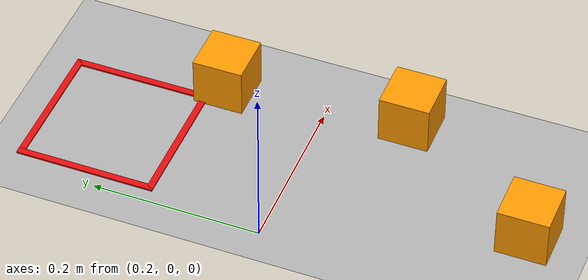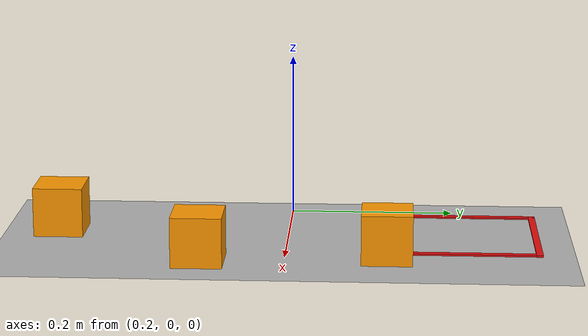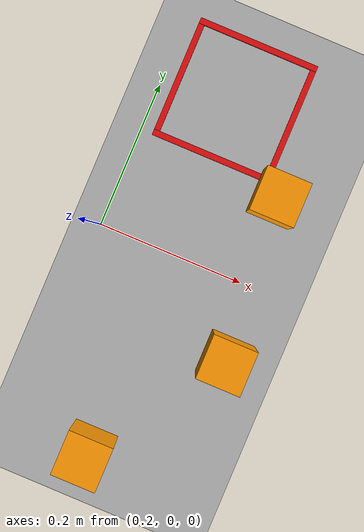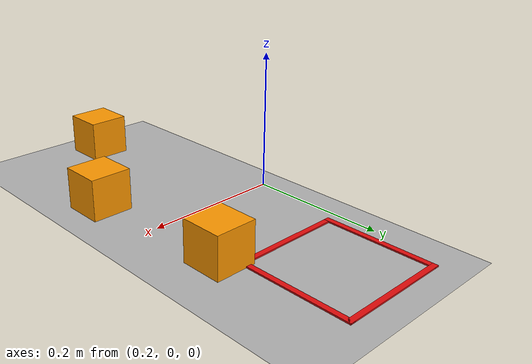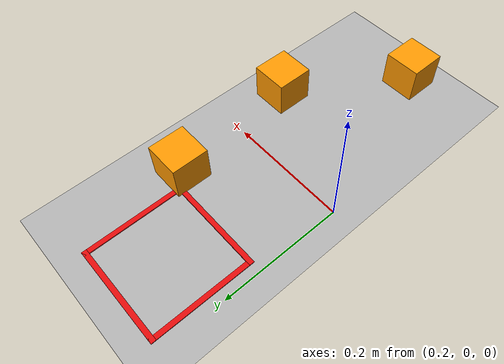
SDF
<?xml version="1.0"?>
<sdf version="1.6">
  <world name="ur3e_workcell">
    <include>
      <uri>model://sun</uri>
    </include>

    <physics type="ode">
      <real_time_update_rate>1000</real_time_update_rate>
      <max_step_size>0.001</max_step_size>
      <real_time_factor>1.0</real_time_factor>
      <ode>
        <solver>
          <type>quick</type>
          <iters>150</iters>
          <sor>1.3</sor>
        </solver>
        <constraints>
          <cfm>0.0</cfm>
          <erp>0.2</erp>
          <contact_max_correcting_vel>10.0</contact_max_correcting_vel>
          <contact_surface_layer>0.0002</contact_surface_layer>
        </constraints>
      </ode>
    </physics>

    <plugin name="gazebo_ros_state" filename="libgazebo_ros_state.so">
      <ros>
        <namespace>/gazebo</namespace>
      </ros>
      <update_rate>20.0</update_rate>
    </plugin>

    <model name="ground_plane">
      <static>true</static>
      <link name="link">
        <collision name="collision">
          <geometry>
            <plane>
              <normal>0 0 1</normal>
              <size>100 100</size>
            </plane>
          </geometry>
          <surface>
            <friction>
              <ode>
                <mu>100</mu>
                <mu2>50</mu2>
              </ode>
            </friction>
          </surface>
        </collision>
        <visual name="visual">
          <geometry>
            <plane>
              <normal>0 0 1</normal>
              <size>100 100</size>
            </plane>
          </geometry>
          <material>
            <ambient>0.7 0.7 0.7 1</ambient>
            <diffuse>0.7 0.7 0.7 1</diffuse>
          </material>
        </visual>
      </link>
    </model>

    <model name="cube_1">
      <pose>0.42 -0.1 0.03 0 0 0</pose>
      <link name="link">
        <inertial>
          <mass>0.15</mass>
          <inertia>
            <ixx>9.0e-5</ixx><ixy>0</ixy><ixz>0</ixz>
            <iyy>9.0e-5</iyy><iyz>0</iyz><izz>9.0e-5</izz>
          </inertia>
        </inertial>
        <visual name="visual">
          <geometry>
            <box>
              <size>0.06 0.06 0.06</size>
            </box>
          </geometry>
          <material>
            <ambient>1 0.6 0 1</ambient>
            <diffuse>1 0.6 0 1</diffuse>
            <specular>0.1 0.06 0 1</specular>
          </material>
        </visual>
        <collision name="collision">
          <geometry>
            <box>
              <size>0.06 0.06 0.06</size>
            </box>
          </geometry>
          <surface>
            <friction>
              <ode>
                <mu>3.0</mu>
                <mu2>3.0</mu2>
              </ode>
            </friction>
            <contact>
              <ode>
                <kp>1e5</kp>
                <kd>1.0</kd>
                <max_vel>0.01</max_vel>
                <min_depth>0.0</min_depth>
              </ode>
            </contact>
          </surface>
        </collision>
      </link>
    </model>
    <model name="cube_2">
      <pose>0.4 0.12 0.03 0 0 0</pose>
      <link name="link">
        <inertial>
          <mass>0.15</mass>
          <inertia>
            <ixx>9.0e-5</ixx><ixy>0</ixy><ixz>0</ixz>
            <iyy>9.0e-5</iyy><iyz>0</iyz><izz>9.0e-5</izz>
          </inertia>
        </inertial>
        <visual name="visual">
          <geometry>
            <box>
              <size>0.06 0.06 0.06</size>
            </box>
          </geometry>
          <material>
            <ambient>1 0.6 0 1</ambient>
            <diffuse>1 0.6 0 1</diffuse>
            <specular>0.1 0.06 0 1</specular>
          </material>
        </visual>
        <collision name="collision">
          <geometry>
            <box>
              <size>0.06 0.06 0.06</size>
            </box>
          </geometry>
          <surface>
            <friction>
              <ode>
                <mu>3.0</mu>
                <mu2>3.0</mu2>
              </ode>
            </friction>
            <contact>
              <ode>
                <kp>1e5</kp>
                <kd>1.0</kd>
                <max_vel>0.01</max_vel>
                <min_depth>0.0</min_depth>
              </ode>
            </contact>
          </surface>
        </collision>
      </link>
    </model>
    <model name="cube_3">
      <pose>0.3 -0.28 0.03 0 0 0</pose>
      <link name="link">
        <inertial>
          <mass>0.15</mass>
          <inertia>
            <ixx>9.0e-5</ixx><ixy>0</ixy><ixz>0</ixz>
            <iyy>9.0e-5</iyy><iyz>0</iyz><izz>9.0e-5</izz>
          </inertia>
        </inertial>
        <visual name="visual">
          <geometry>
            <box>
              <size>0.06 0.06 0.06</size>
            </box>
          </geometry>
          <material>
            <ambient>1 0.6 0 1</ambient>
            <diffuse>1 0.6 0 1</diffuse>
            <specular>0.1 0.06 0 1</specular>
          </material>
        </visual>
        <collision name="collision">
          <geometry>
            <box>
              <size>0.06 0.06 0.06</size>
            </box>
          </geometry>
          <surface>
            <friction>
              <ode>
                <mu>3.0</mu>
                <mu2>3.0</mu2>
              </ode>
            </friction>
            <contact>
              <ode>
                <kp>1e5</kp>
                <kd>1.0</kd>
                <max_vel>0.01</max_vel>
                <min_depth>0.0</min_depth>
              </ode>
            </contact>
          </surface>
        </collision>
      </link>
    </model>

    <model name="drop_zone_0">
      <static>true</static>
      <pose>0.3 0.14 0.001 0 0 0</pose>
      <link name="link">
        <visual name="visual">
          <geometry><box><size>0.168 0.008 0.002</size></box></geometry>
          <material>
            <ambient>0.8 0 0 1</ambient>
            <diffuse>0.9 0.05 0.05 1</diffuse>
          </material>
        </visual>
      </link>
    </model>
    <model name="drop_zone_1">
      <static>true</static>
      <pose>0.3 0.3 0.001 0 0 0</pose>
      <link name="link">
        <visual name="visual">
          <geometry><box><size>0.168 0.008 0.002</size></box></geometry>
          <material>
            <ambient>0.8 0 0 1</ambient>
            <diffuse>0.9 0.05 0.05 1</diffuse>
          </material>
        </visual>
      </link>
    </model>
    <model name="drop_zone_2">
      <static>true</static>
      <pose>0.21999999999999997 0.22 0.001 0 0 0</pose>
      <link name="link">
        <visual name="visual">
          <geometry><box><size>0.008 0.168 0.002</size></box></geometry>
          <material>
            <ambient>0.8 0 0 1</ambient>
            <diffuse>0.9 0.05 0.05 1</diffuse>
          </material>
        </visual>
      </link>
    </model>
    <model name="drop_zone_3">
      <static>true</static>
      <pose>0.38 0.22 0.001 0 0 0</pose>
      <link name="link">
        <visual name="visual">
          <geometry><box><size>0.008 0.168 0.002</size></box></geometry>
          <material>
            <ambient>0.8 0 0 1</ambient>
            <diffuse>0.9 0.05 0.05 1</diffuse>
          </material>
        </visual>
      </link>
    </model>

    <model name="camera_model">
      <static>true</static>
      <pose>0.15 0 3.0 0 1.5708 0</pose>
      <link name="camera_link">
        <sensor type="camera" name="camera">
          <update_rate>30.0</update_rate>
          <visualize>true</visualize>
          <camera>
            <horizontal_fov>1.4</horizontal_fov>
            <image>
              <width>1600</width>
              <height>1200</height>
              <format>B8G8R8</format>
            </image>
            <clip>
              <near>0.1</near>
              <far>10.0</far>
            </clip>
          </camera>
          <plugin name="camera_controller" filename="libgazebo_ros_camera.so">
            <ros>
              <namespace>/</namespace>
            </ros>
            <camera_name>camera</camera_name>
            <frame_name>camera_link</frame_name>
          </plugin>
        </sensor>
      </link>
    </model>
  </world>
</sdf>
